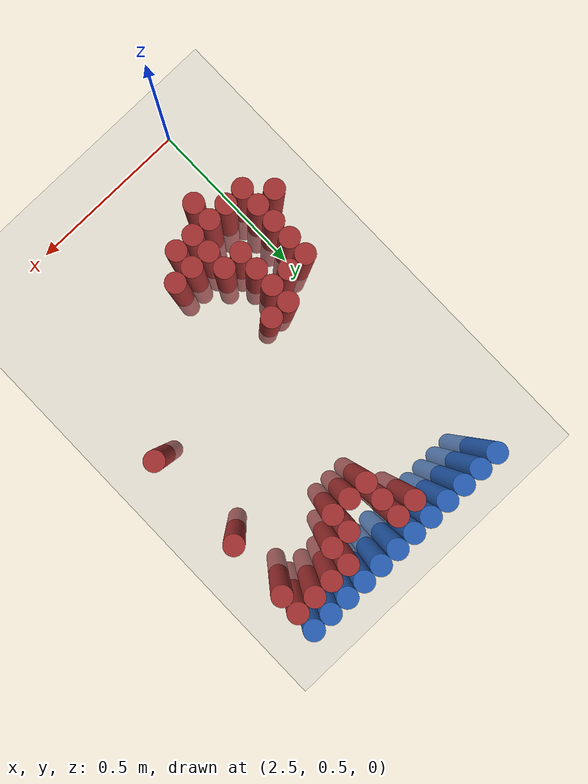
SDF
<sdf version="1.6">
 <world name="default">
  <model name="ground_plane">
   <static>1</static>
   <link name="link">
    <collision name="collision">
     <geometry><plane><normal>0 0 1</normal><size>100 100</size></plane></geometry>
     <surface><friction><ode><mu>100</mu><mu2>50</mu2></ode></friction></surface>
    </collision>
    <visual name="visual">
     <cast_shadows>0</cast_shadows>
     <geometry><plane><normal>0 0 1</normal><size>100 100</size></plane></geometry>
     <material>
      <script><uri>file://media/materials/scripts/gazebo.material</uri><name>Gazebo/Grey</name></script>
     </material>
    </visual>
   </link>
  </model>
  <model name="unit_cylinder_102">
   <static>1</static>
   <pose>2.490000 1.770000 0.000000 0.000000 0.000000 0.000000</pose>
   <link name="link">
    <inertial>
     <mass>1</mass>
     <inertia><ixx>0.145833</ixx><ixy>0</ixy><ixz>0</ixz><iyy>0.145833</iyy><iyz>0</iyz><izz>0.125</izz></inertia>
    </inertial>
    <collision name="collision">
     <geometry><cylinder><radius>0.030000</radius><length>0.5</length></cylinder></geometry>
    </collision>
    <visual name="visual">
     <geometry><cylinder><radius>0.030000</radius><length>0.5</length></cylinder></geometry>
     <material>
      <ambient>0.152000 0.379000 0.720000 1</ambient>
      <diffuse>0.152000 0.379000 0.720000 1</diffuse>
     </material>
     <material>
      <script><name>Gazebo/Grey</name><uri>file://media/materials/scripts/gazebo.material</uri></script>
     </material>
    </visual>
   </link>
  </model>
  <model name="unit_cylinder_103">
   <static>1</static>
   <pose>2.550000 1.770000 0.000000 0.000000 0.000000 0.000000</pose>
   <link name="link">
    <inertial>
     <mass>1</mass>
     <inertia><ixx>0.145833</ixx><ixy>0</ixy><ixz>0</ixz><iyy>0.145833</iyy><iyz>0</iyz><izz>0.125</izz></inertia>
    </inertial>
    <collision name="collision">
     <geometry><cylinder><radius>0.030000</radius><length>0.5</length></cylinder></geometry>
    </collision>
    <visual name="visual">
     <geometry><cylinder><radius>0.030000</radius><length>0.5</length></cylinder></geometry>
     <material>
      <ambient>0.152000 0.379000 0.720000 1</ambient>
      <diffuse>0.152000 0.379000 0.720000 1</diffuse>
     </material>
     <material>
      <script><name>Gazebo/Grey</name><uri>file://media/materials/scripts/gazebo.material</uri></script>
     </material>
    </visual>
   </link>
  </model>
  <model name="unit_cylinder_104">
   <static>1</static>
   <pose>2.610000 1.770000 0.000000 0.000000 0.000000 0.000000</pose>
   <link name="link">
    <inertial>
     <mass>1</mass>
     <inertia><ixx>0.145833</ixx><ixy>0</ixy><ixz>0</ixz><iyy>0.145833</iyy><iyz>0</iyz><izz>0.125</izz></inertia>
    </inertial>
    <collision name="collision">
     <geometry><cylinder><radius>0.030000</radius><length>0.5</length></cylinder></geometry>
    </collision>
    <visual name="visual">
     <geometry><cylinder><radius>0.030000</radius><length>0.5</length></cylinder></geometry>
     <material>
      <ambient>0.152000 0.379000 0.720000 1</ambient>
      <diffuse>0.152000 0.379000 0.720000 1</diffuse>
     </material>
     <material>
      <script><name>Gazebo/Grey</name><uri>file://media/materials/scripts/gazebo.material</uri></script>
     </material>
    </visual>
   </link>
  </model>
  <model name="unit_cylinder_105">
   <static>1</static>
   <pose>2.670000 1.770000 0.000000 0.000000 0.000000 0.000000</pose>
   <link name="link">
    <inertial>
     <mass>1</mass>
     <inertia><ixx>0.145833</ixx><ixy>0</ixy><ixz>0</ixz><iyy>0.145833</iyy><iyz>0</iyz><izz>0.125</izz></inertia>
    </inertial>
    <collision name="collision">
     <geometry><cylinder><radius>0.030000</radius><length>0.5</length></cylinder></geometry>
    </collision>
    <visual name="visual">
     <geometry><cylinder><radius>0.030000</radius><length>0.5</length></cylinder></geometry>
     <material>
      <ambient>0.152000 0.379000 0.720000 1</ambient>
      <diffuse>0.152000 0.379000 0.720000 1</diffuse>
     </material>
     <material>
      <script><name>Gazebo/Grey</name><uri>file://media/materials/scripts/gazebo.material</uri></script>
     </material>
    </visual>
   </link>
  </model>
  <model name="unit_cylinder_106">
   <static>1</static>
   <pose>2.730000 1.770000 0.000000 0.000000 0.000000 0.000000</pose>
   <link name="link">
    <inertial>
     <mass>1</mass>
     <inertia><ixx>0.145833</ixx><ixy>0</ixy><ixz>0</ixz><iyy>0.145833</iyy><iyz>0</iyz><izz>0.125</izz></inertia>
    </inertial>
    <collision name="collision">
     <geometry><cylinder><radius>0.030000</radius><length>0.5</length></cylinder></geometry>
    </collision>
    <visual name="visual">
     <geometry><cylinder><radius>0.030000</radius><length>0.5</length></cylinder></geometry>
     <material>
      <ambient>0.152000 0.379000 0.720000 1</ambient>
      <diffuse>0.152000 0.379000 0.720000 1</diffuse>
     </material>
     <material>
      <script><name>Gazebo/Grey</name><uri>file://media/materials/scripts/gazebo.material</uri></script>
     </material>
    </visual>
   </link>
  </model>
  <model name="unit_cylinder_107">
   <static>1</static>
   <pose>2.790000 1.770000 0.000000 0.000000 0.000000 0.000000</pose>
   <link name="link">
    <inertial>
     <mass>1</mass>
     <inertia><ixx>0.145833</ixx><ixy>0</ixy><ixz>0</ixz><iyy>0.145833</iyy><iyz>0</iyz><izz>0.125</izz></inertia>
    </inertial>
    <collision name="collision">
     <geometry><cylinder><radius>0.030000</radius><length>0.5</length></cylinder></geometry>
    </collision>
    <visual name="visual">
     <geometry><cylinder><radius>0.030000</radius><length>0.5</length></cylinder></geometry>
     <material>
      <ambient>0.152000 0.379000 0.720000 1</ambient>
      <diffuse>0.152000 0.379000 0.720000 1</diffuse>
     </material>
     <material>
      <script><name>Gazebo/Grey</name><uri>file://media/materials/scripts/gazebo.material</uri></script>
     </material>
    </visual>
   </link>
  </model>
  <model name="unit_cylinder_108">
   <static>1</static>
   <pose>2.850000 1.770000 0.000000 0.000000 0.000000 0.000000</pose>
   <link name="link">
    <inertial>
     <mass>1</mass>
     <inertia><ixx>0.145833</ixx><ixy>0</ixy><ixz>0</ixz><iyy>0.145833</iyy><iyz>0</iyz><izz>0.125</izz></inertia>
    </inertial>
    <collision name="collision">
     <geometry><cylinder><radius>0.030000</radius><length>0.5</length></cylinder></geometry>
    </collision>
    <visual name="visual">
     <geometry><cylinder><radius>0.030000</radius><length>0.5</length></cylinder></geometry>
     <material>
      <ambient>0.152000 0.379000 0.720000 1</ambient>
      <diffuse>0.152000 0.379000 0.720000 1</diffuse>
     </material>
     <material>
      <script><name>Gazebo/Grey</name><uri>file://media/materials/scripts/gazebo.material</uri></script>
     </material>
    </visual>
   </link>
  </model>
  <model name="unit_cylinder_109">
   <static>1</static>
   <pose>2.910000 1.770000 0.000000 0.000000 0.000000 0.000000</pose>
   <link name="link">
    <inertial>
     <mass>1</mass>
     <inertia><ixx>0.145833</ixx><ixy>0</ixy><ixz>0</ixz><iyy>0.145833</iyy><iyz>0</iyz><izz>0.125</izz></inertia>
    </inertial>
    <collision name="collision">
     <geometry><cylinder><radius>0.030000</radius><length>0.5</length></cylinder></geometry>
    </collision>
    <visual name="visual">
     <geometry><cylinder><radius>0.030000</radius><length>0.5</length></cylinder></geometry>
     <material>
      <ambient>0.152000 0.379000 0.720000 1</ambient>
      <diffuse>0.152000 0.379000 0.720000 1</diffuse>
     </material>
     <material>
      <script><name>Gazebo/Grey</name><uri>file://media/materials/scripts/gazebo.material</uri></script>
     </material>
    </visual>
   </link>
  </model>
  <model name="unit_cylinder_110">
   <static>1</static>
   <pose>2.970000 1.770000 0.000000 0.000000 0.000000 0.000000</pose>
   <link name="link">
    <inertial>
     <mass>1</mass>
     <inertia><ixx>0.145833</ixx><ixy>0</ixy><ixz>0</ixz><iyy>0.145833</iyy><iyz>0</iyz><izz>0.125</izz></inertia>
    </inertial>
    <collision name="collision">
     <geometry><cylinder><radius>0.030000</radius><length>0.5</length></cylinder></geometry>
    </collision>
    <visual name="visual">
     <geometry><cylinder><radius>0.030000</radius><length>0.5</length></cylinder></geometry>
     <material>
      <ambient>0.152000 0.379000 0.720000 1</ambient>
      <diffuse>0.152000 0.379000 0.720000 1</diffuse>
     </material>
     <material>
      <script><name>Gazebo/Grey</name><uri>file://media/materials/scripts/gazebo.material</uri></script>
     </material>
    </visual>
   </link>
  </model>
  <model name="unit_cylinder_111">
   <static>1</static>
   <pose>3.030000 1.770000 0.000000 0.000000 0.000000 0.000000</pose>
   <link name="link">
    <inertial>
     <mass>1</mass>
     <inertia><ixx>0.145833</ixx><ixy>0</ixy><ixz>0</ixz><iyy>0.145833</iyy><iyz>0</iyz><izz>0.125</izz></inertia>
    </inertial>
    <collision name="collision">
     <geometry><cylinder><radius>0.030000</radius><length>0.5</length></cylinder></geometry>
    </collision>
    <visual name="visual">
     <geometry><cylinder><radius>0.030000</radius><length>0.5</length></cylinder></geometry>
     <material>
      <ambient>0.152000 0.379000 0.720000 1</ambient>
      <diffuse>0.152000 0.379000 0.720000 1</diffuse>
     </material>
     <material>
      <script><name>Gazebo/Grey</name><uri>file://media/materials/scripts/gazebo.material</uri></script>
     </material>
    </visual>
   </link>
  </model>
  <model name="unit_cylinder_112">
   <static>1</static>
   <pose>3.090000 1.770000 0.000000 0.000000 0.000000 0.000000</pose>
   <link name="link">
    <inertial>
     <mass>1</mass>
     <inertia><ixx>0.145833</ixx><ixy>0</ixy><ixz>0</ixz><iyy>0.145833</iyy><iyz>0</iyz><izz>0.125</izz></inertia>
    </inertial>
    <collision name="collision">
     <geometry><cylinder><radius>0.030000</radius><length>0.5</length></cylinder></geometry>
    </collision>
    <visual name="visual">
     <geometry><cylinder><radius>0.030000</radius><length>0.5</length></cylinder></geometry>
     <material>
      <ambient>0.152000 0.379000 0.720000 1</ambient>
      <diffuse>0.152000 0.379000 0.720000 1</diffuse>
     </material>
     <material>
      <script><name>Gazebo/Grey</name><uri>file://media/materials/scripts/gazebo.material</uri></script>
     </material>
    </visual>
   </link>
  </model>
  <model name="unit_cylinder_113">
   <static>1</static>
   <pose>3.150000 1.770000 0.000000 0.000000 0.000000 0.000000</pose>
   <link name="link">
    <inertial>
     <mass>1</mass>
     <inertia><ixx>0.145833</ixx><ixy>0</ixy><ixz>0</ixz><iyy>0.145833</iyy><iyz>0</iyz><izz>0.125</izz></inertia>
    </inertial>
    <collision name="collision">
     <geometry><cylinder><radius>0.030000</radius><length>0.5</length></cylinder></geometry>
    </collision>
    <visual name="visual">
     <geometry><cylinder><radius>0.030000</radius><length>0.5</length></cylinder></geometry>
     <material>
      <ambient>0.152000 0.379000 0.720000 1</ambient>
      <diffuse>0.152000 0.379000 0.720000 1</diffuse>
     </material>
     <material>
      <script><name>Gazebo/Grey</name><uri>file://media/materials/scripts/gazebo.material</uri></script>
     </material>
    </visual>
   </link>
  </model>
  <model name="unit_cylinder_129">
   <static>1</static>
   <pose>2.730000 1.710000 0.000000 0.000000 0.000000 0.000000</pose>
   <link name="link">
    <inertial>
     <mass>1</mass>
     <inertia><ixx>0.145833</ixx><ixy>0</ixy><ixz>0</ixz><iyy>0.145833</iyy><iyz>0</iyz><izz>0.125</izz></inertia>
    </inertial>
    <collision name="collision">
     <geometry><cylinder><radius>0.030000</radius><length>0.5</length></cylinder></geometry>
    </collision>
    <visual name="visual">
     <geometry><cylinder><radius>0.030000</radius><length>0.5</length></cylinder></geometry>
     <material>
      <ambient>0.648000 0.192000 0.192000 1</ambient>
      <diffuse>0.648000 0.192000 0.192000 1</diffuse>
     </material>
     <material>
      <script><name>Gazebo/Grey</name><uri>file://media/materials/scripts/gazebo.material</uri></script>
     </material>
    </visual>
   </link>
  </model>
  <model name="unit_cylinder_130">
   <static>1</static>
   <pose>2.790000 1.710000 0.000000 0.000000 0.000000 0.000000</pose>
   <link name="link">
    <inertial>
     <mass>1</mass>
     <inertia><ixx>0.145833</ixx><ixy>0</ixy><ixz>0</ixz><iyy>0.145833</iyy><iyz>0</iyz><izz>0.125</izz></inertia>
    </inertial>
    <collision name="collision">
     <geometry><cylinder><radius>0.030000</radius><length>0.5</length></cylinder></geometry>
    </collision>
    <visual name="visual">
     <geometry><cylinder><radius>0.030000</radius><length>0.5</length></cylinder></geometry>
     <material>
      <ambient>0.648000 0.192000 0.192000 1</ambient>
      <diffuse>0.648000 0.192000 0.192000 1</diffuse>
     </material>
     <material>
      <script><name>Gazebo/Grey</name><uri>file://media/materials/scripts/gazebo.material</uri></script>
     </material>
    </visual>
   </link>
  </model>
  <model name="unit_cylinder_131">
   <static>1</static>
   <pose>2.970000 1.710000 0.000000 0.000000 0.000000 0.000000</pose>
   <link name="link">
    <inertial>
     <mass>1</mass>
     <inertia><ixx>0.145833</ixx><ixy>0</ixy><ixz>0</ixz><iyy>0.145833</iyy><iyz>0</iyz><izz>0.125</izz></inertia>
    </inertial>
    <collision name="collision">
     <geometry><cylinder><radius>0.030000</radius><length>0.5</length></cylinder></geometry>
    </collision>
    <visual name="visual">
     <geometry><cylinder><radius>0.030000</radius><length>0.5</length></cylinder></geometry>
     <material>
      <ambient>0.648000 0.192000 0.192000 1</ambient>
      <diffuse>0.648000 0.192000 0.192000 1</diffuse>
     </material>
     <material>
      <script><name>Gazebo/Grey</name><uri>file://media/materials/scripts/gazebo.material</uri></script>
     </material>
    </visual>
   </link>
  </model>
  <model name="unit_cylinder_132">
   <static>1</static>
   <pose>3.030000 1.710000 0.000000 0.000000 0.000000 0.000000</pose>
   <link name="link">
    <inertial>
     <mass>1</mass>
     <inertia><ixx>0.145833</ixx><ixy>0</ixy><ixz>0</ixz><iyy>0.145833</iyy><iyz>0</iyz><izz>0.125</izz></inertia>
    </inertial>
    <collision name="collision">
     <geometry><cylinder><radius>0.030000</radius><length>0.5</length></cylinder></geometry>
    </collision>
    <visual name="visual">
     <geometry><cylinder><radius>0.030000</radius><length>0.5</length></cylinder></geometry>
     <material>
      <ambient>0.648000 0.192000 0.192000 1</ambient>
      <diffuse>0.648000 0.192000 0.192000 1</diffuse>
     </material>
     <material>
      <script><name>Gazebo/Grey</name><uri>file://media/materials/scripts/gazebo.material</uri></script>
     </material>
    </visual>
   </link>
  </model>
  <model name="unit_cylinder_133">
   <static>1</static>
   <pose>3.090000 1.710000 0.000000 0.000000 0.000000 0.000000</pose>
   <link name="link">
    <inertial>
     <mass>1</mass>
     <inertia><ixx>0.145833</ixx><ixy>0</ixy><ixz>0</ixz><iyy>0.145833</iyy><iyz>0</iyz><izz>0.125</izz></inertia>
    </inertial>
    <collision name="collision">
     <geometry><cylinder><radius>0.030000</radius><length>0.5</length></cylinder></geometry>
    </collision>
    <visual name="visual">
     <geometry><cylinder><radius>0.030000</radius><length>0.5</length></cylinder></geometry>
     <material>
      <ambient>0.648000 0.192000 0.192000 1</ambient>
      <diffuse>0.648000 0.192000 0.192000 1</diffuse>
     </material>
     <material>
      <script><name>Gazebo/Grey</name><uri>file://media/materials/scripts/gazebo.material</uri></script>
     </material>
    </visual>
   </link>
  </model>
  <model name="unit_cylinder_134">
   <static>1</static>
   <pose>3.150000 1.710000 0.000000 0.000000 0.000000 0.000000</pose>
   <link name="link">
    <inertial>
     <mass>1</mass>
     <inertia><ixx>0.145833</ixx><ixy>0</ixy><ixz>0</ixz><iyy>0.145833</iyy><iyz>0</iyz><izz>0.125</izz></inertia>
    </inertial>
    <collision name="collision">
     <geometry><cylinder><radius>0.030000</radius><length>0.5</length></cylinder></geometry>
    </collision>
    <visual name="visual">
     <geometry><cylinder><radius>0.030000</radius><length>0.5</length></cylinder></geometry>
     <material>
      <ambient>0.648000 0.192000 0.192000 1</ambient>
      <diffuse>0.648000 0.192000 0.192000 1</diffuse>
     </material>
     <material>
      <script><name>Gazebo/Grey</name><uri>file://media/materials/scripts/gazebo.material</uri></script>
     </material>
    </visual>
   </link>
  </model>
  <model name="unit_cylinder_143">
   <static>1</static>
   <pose>2.790000 1.650000 0.000000 0.000000 0.000000 0.000000</pose>
   <link name="link">
    <inertial>
     <mass>1</mass>
     <inertia><ixx>0.145833</ixx><ixy>0</ixy><ixz>0</ixz><iyy>0.145833</iyy><iyz>0</iyz><izz>0.125</izz></inertia>
    </inertial>
    <collision name="collision">
     <geometry><cylinder><radius>0.030000</radius><length>0.5</length></cylinder></geometry>
    </collision>
    <visual name="visual">
     <geometry><cylinder><radius>0.030000</radius><length>0.5</length></cylinder></geometry>
     <material>
      <ambient>0.648000 0.192000 0.192000 1</ambient>
      <diffuse>0.648000 0.192000 0.192000 1</diffuse>
     </material>
     <material>
      <script><name>Gazebo/Grey</name><uri>file://media/materials/scripts/gazebo.material</uri></script>
     </material>
    </visual>
   </link>
  </model>
  <model name="unit_cylinder_144">
   <static>1</static>
   <pose>2.910000 1.650000 0.000000 0.000000 0.000000 0.000000</pose>
   <link name="link">
    <inertial>
     <mass>1</mass>
     <inertia><ixx>0.145833</ixx><ixy>0</ixy><ixz>0</ixz><iyy>0.145833</iyy><iyz>0</iyz><izz>0.125</izz></inertia>
    </inertial>
    <collision name="collision">
     <geometry><cylinder><radius>0.030000</radius><length>0.5</length></cylinder></geometry>
    </collision>
    <visual name="visual">
     <geometry><cylinder><radius>0.030000</radius><length>0.5</length></cylinder></geometry>
     <material>
      <ambient>0.648000 0.192000 0.192000 1</ambient>
      <diffuse>0.648000 0.192000 0.192000 1</diffuse>
     </material>
     <material>
      <script><name>Gazebo/Grey</name><uri>file://media/materials/scripts/gazebo.material</uri></script>
     </material>
    </visual>
   </link>
  </model>
  <model name="unit_cylinder_145">
   <static>1</static>
   <pose>2.970000 1.650000 0.000000 0.000000 0.000000 0.000000</pose>
   <link name="link">
    <inertial>
     <mass>1</mass>
     <inertia><ixx>0.145833</ixx><ixy>0</ixy><ixz>0</ixz><iyy>0.145833</iyy><iyz>0</iyz><izz>0.125</izz></inertia>
    </inertial>
    <collision name="collision">
     <geometry><cylinder><radius>0.030000</radius><length>0.5</length></cylinder></geometry>
    </collision>
    <visual name="visual">
     <geometry><cylinder><radius>0.030000</radius><length>0.5</length></cylinder></geometry>
     <material>
      <ambient>0.648000 0.192000 0.192000 1</ambient>
      <diffuse>0.648000 0.192000 0.192000 1</diffuse>
     </material>
     <material>
      <script><name>Gazebo/Grey</name><uri>file://media/materials/scripts/gazebo.material</uri></script>
     </material>
    </visual>
   </link>
  </model>
  <model name="unit_cylinder_146">
   <static>1</static>
   <pose>3.150000 1.650000 0.000000 0.000000 0.000000 0.000000</pose>
   <link name="link">
    <inertial>
     <mass>1</mass>
     <inertia><ixx>0.145833</ixx><ixy>0</ixy><ixz>0</ixz><iyy>0.145833</iyy><iyz>0</iyz><izz>0.125</izz></inertia>
    </inertial>
    <collision name="collision">
     <geometry><cylinder><radius>0.030000</radius><length>0.5</length></cylinder></geometry>
    </collision>
    <visual name="visual">
     <geometry><cylinder><radius>0.030000</radius><length>0.5</length></cylinder></geometry>
     <material>
      <ambient>0.648000 0.192000 0.192000 1</ambient>
      <diffuse>0.648000 0.192000 0.192000 1</diffuse>
     </material>
     <material>
      <script><name>Gazebo/Grey</name><uri>file://media/materials/scripts/gazebo.material</uri></script>
     </material>
    </visual>
   </link>
  </model>
  <model name="unit_cylinder_158">
   <static>1</static>
   <pose>2.790000 1.590000 0.000000 0.000000 0.000000 0.000000</pose>
   <link name="link">
    <inertial>
     <mass>1</mass>
     <inertia><ixx>0.145833</ixx><ixy>0</ixy><ixz>0</ixz><iyy>0.145833</iyy><iyz>0</iyz><izz>0.125</izz></inertia>
    </inertial>
    <collision name="collision">
     <geometry><cylinder><radius>0.030000</radius><length>0.5</length></cylinder></geometry>
    </collision>
    <visual name="visual">
     <geometry><cylinder><radius>0.030000</radius><length>0.5</length></cylinder></geometry>
     <material>
      <ambient>0.648000 0.192000 0.192000 1</ambient>
      <diffuse>0.648000 0.192000 0.192000 1</diffuse>
     </material>
     <material>
      <script><name>Gazebo/Grey</name><uri>file://media/materials/scripts/gazebo.material</uri></script>
     </material>
    </visual>
   </link>
  </model>
  <model name="unit_cylinder_159">
   <static>1</static>
   <pose>2.850000 1.590000 0.000000 0.000000 0.000000 0.000000</pose>
   <link name="link">
    <inertial>
     <mass>1</mass>
     <inertia><ixx>0.145833</ixx><ixy>0</ixy><ixz>0</ixz><iyy>0.145833</iyy><iyz>0</iyz><izz>0.125</izz></inertia>
    </inertial>
    <collision name="collision">
     <geometry><cylinder><radius>0.030000</radius><length>0.5</length></cylinder></geometry>
    </collision>
    <visual name="visual">
     <geometry><cylinder><radius>0.030000</radius><length>0.5</length></cylinder></geometry>
     <material>
      <ambient>0.648000 0.192000 0.192000 1</ambient>
      <diffuse>0.648000 0.192000 0.192000 1</diffuse>
     </material>
     <material>
      <script><name>Gazebo/Grey</name><uri>file://media/materials/scripts/gazebo.material</uri></script>
     </material>
    </visual>
   </link>
  </model>
  <model name="unit_cylinder_160">
   <static>1</static>
   <pose>2.910000 1.590000 0.000000 0.000000 0.000000 0.000000</pose>
   <link name="link">
    <inertial>
     <mass>1</mass>
     <inertia><ixx>0.145833</ixx><ixy>0</ixy><ixz>0</ixz><iyy>0.145833</iyy><iyz>0</iyz><izz>0.125</izz></inertia>
    </inertial>
    <collision name="collision">
     <geometry><cylinder><radius>0.030000</radius><length>0.5</length></cylinder></geometry>
    </collision>
    <visual name="visual">
     <geometry><cylinder><radius>0.030000</radius><length>0.5</length></cylinder></geometry>
     <material>
      <ambient>0.648000 0.192000 0.192000 1</ambient>
      <diffuse>0.648000 0.192000 0.192000 1</diffuse>
     </material>
     <material>
      <script><name>Gazebo/Grey</name><uri>file://media/materials/scripts/gazebo.material</uri></script>
     </material>
    </visual>
   </link>
  </model>
  <model name="unit_cylinder_169">
   <static>1</static>
   <pose>3.150000 1.470000 0.000000 0.000000 0.000000 0.000000</pose>
   <link name="link">
    <inertial>
     <mass>1</mass>
     <inertia><ixx>0.145833</ixx><ixy>0</ixy><ixz>0</ixz><iyy>0.145833</iyy><iyz>0</iyz><izz>0.125</izz></inertia>
    </inertial>
    <collision name="collision">
     <geometry><cylinder><radius>0.030000</radius><length>0.5</length></cylinder></geometry>
    </collision>
    <visual name="visual">
     <geometry><cylinder><radius>0.030000</radius><length>0.5</length></cylinder></geometry>
     <material>
      <ambient>0.648000 0.192000 0.192000 1</ambient>
      <diffuse>0.648000 0.192000 0.192000 1</diffuse>
     </material>
     <material>
      <script><name>Gazebo/Grey</name><uri>file://media/materials/scripts/gazebo.material</uri></script>
     </material>
    </visual>
   </link>
  </model>
  <model name="unit_cylinder_176">
   <static>1</static>
   <pose>3.150000 1.170000 0.000000 0.000000 0.000000 0.000000</pose>
   <link name="link">
    <inertial>
     <mass>1</mass>
     <inertia><ixx>0.145833</ixx><ixy>0</ixy><ixz>0</ixz><iyy>0.145833</iyy><iyz>0</iyz><izz>0.125</izz></inertia>
    </inertial>
    <collision name="collision">
     <geometry><cylinder><radius>0.030000</radius><length>0.5</length></cylinder></geometry>
    </collision>
    <visual name="visual">
     <geometry><cylinder><radius>0.030000</radius><length>0.5</length></cylinder></geometry>
     <material>
      <ambient>0.648000 0.192000 0.192000 1</ambient>
      <diffuse>0.648000 0.192000 0.192000 1</diffuse>
     </material>
     <material>
      <script><name>Gazebo/Grey</name><uri>file://media/materials/scripts/gazebo.material</uri></script>
     </material>
    </visual>
   </link>
  </model>
  <model name="unit_cylinder_178">
   <static>1</static>
   <pose>2.610000 1.110000 0.000000 0.000000 0.000000 0.000000</pose>
   <link name="link">
    <inertial>
     <mass>1</mass>
     <inertia><ixx>0.145833</ixx><ixy>0</ixy><ixz>0</ixz><iyy>0.145833</iyy><iyz>0</iyz><izz>0.125</izz></inertia>
    </inertial>
    <collision name="collision">
     <geometry><cylinder><radius>0.030000</radius><length>0.5</length></cylinder></geometry>
    </collision>
    <visual name="visual">
     <geometry><cylinder><radius>0.030000</radius><length>0.5</length></cylinder></geometry>
     <material>
      <ambient>0.648000 0.192000 0.192000 1</ambient>
      <diffuse>0.648000 0.192000 0.192000 1</diffuse>
     </material>
     <material>
      <script><name>Gazebo/Grey</name><uri>file://media/materials/scripts/gazebo.material</uri></script>
     </material>
    </visual>
   </link>
  </model>
  <model name="unit_cylinder_179">
   <static>1</static>
   <pose>2.670000 1.110000 0.000000 0.000000 0.000000 0.000000</pose>
   <link name="link">
    <inertial>
     <mass>1</mass>
     <inertia><ixx>0.145833</ixx><ixy>0</ixy><ixz>0</ixz><iyy>0.145833</iyy><iyz>0</iyz><izz>0.125</izz></inertia>
    </inertial>
    <collision name="collision">
     <geometry><cylinder><radius>0.030000</radius><length>0.5</length></cylinder></geometry>
    </collision>
    <visual name="visual">
     <geometry><cylinder><radius>0.030000</radius><length>0.5</length></cylinder></geometry>
     <material>
      <ambient>0.648000 0.192000 0.192000 1</ambient>
      <diffuse>0.648000 0.192000 0.192000 1</diffuse>
     </material>
     <material>
      <script><name>Gazebo/Grey</name><uri>file://media/materials/scripts/gazebo.material</uri></script>
     </material>
    </visual>
   </link>
  </model>
  <model name="unit_cylinder_180">
   <static>1</static>
   <pose>2.490000 1.050000 0.000000 0.000000 0.000000 0.000000</pose>
   <link name="link">
    <inertial>
     <mass>1</mass>
     <inertia><ixx>0.145833</ixx><ixy>0</ixy><ixz>0</ixz><iyy>0.145833</iyy><iyz>0</iyz><izz>0.125</izz></inertia>
    </inertial>
    <collision name="collision">
     <geometry><cylinder><radius>0.030000</radius><length>0.5</length></cylinder></geometry>
    </collision>
    <visual name="visual">
     <geometry><cylinder><radius>0.030000</radius><length>0.5</length></cylinder></geometry>
     <material>
      <ambient>0.648000 0.192000 0.192000 1</ambient>
      <diffuse>0.648000 0.192000 0.192000 1</diffuse>
     </material>
     <material>
      <script><name>Gazebo/Grey</name><uri>file://media/materials/scripts/gazebo.material</uri></script>
     </material>
    </visual>
   </link>
  </model>
  <model name="unit_cylinder_181">
   <static>1</static>
   <pose>2.550000 1.050000 0.000000 0.000000 0.000000 0.000000</pose>
   <link name="link">
    <inertial>
     <mass>1</mass>
     <inertia><ixx>0.145833</ixx><ixy>0</ixy><ixz>0</ixz><iyy>0.145833</iyy><iyz>0</iyz><izz>0.125</izz></inertia>
    </inertial>
    <collision name="collision">
     <geometry><cylinder><radius>0.030000</radius><length>0.5</length></cylinder></geometry>
    </collision>
    <visual name="visual">
     <geometry><cylinder><radius>0.030000</radius><length>0.5</length></cylinder></geometry>
     <material>
      <ambient>0.648000 0.192000 0.192000 1</ambient>
      <diffuse>0.648000 0.192000 0.192000 1</diffuse>
     </material>
     <material>
      <script><name>Gazebo/Grey</name><uri>file://media/materials/scripts/gazebo.material</uri></script>
     </material>
    </visual>
   </link>
  </model>
  <model name="unit_cylinder_182">
   <static>1</static>
   <pose>2.610000 1.050000 0.000000 0.000000 0.000000 0.000000</pose>
   <link name="link">
    <inertial>
     <mass>1</mass>
     <inertia><ixx>0.145833</ixx><ixy>0</ixy><ixz>0</ixz><iyy>0.145833</iyy><iyz>0</iyz><izz>0.125</izz></inertia>
    </inertial>
    <collision name="collision">
     <geometry><cylinder><radius>0.030000</radius><length>0.5</length></cylinder></geometry>
    </collision>
    <visual name="visual">
     <geometry><cylinder><radius>0.030000</radius><length>0.5</length></cylinder></geometry>
     <material>
      <ambient>0.648000 0.192000 0.192000 1</ambient>
      <diffuse>0.648000 0.192000 0.192000 1</diffuse>
     </material>
     <material>
      <script><name>Gazebo/Grey</name><uri>file://media/materials/scripts/gazebo.material</uri></script>
     </material>
    </visual>
   </link>
  </model>
  <model name="unit_cylinder_183">
   <static>1</static>
   <pose>2.490000 0.990000 0.000000 0.000000 0.000000 0.000000</pose>
   <link name="link">
    <inertial>
     <mass>1</mass>
     <inertia><ixx>0.145833</ixx><ixy>0</ixy><ixz>0</ixz><iyy>0.145833</iyy><iyz>0</iyz><izz>0.125</izz></inertia>
    </inertial>
    <collision name="collision">
     <geometry><cylinder><radius>0.030000</radius><length>0.5</length></cylinder></geometry>
    </collision>
    <visual name="visual">
     <geometry><cylinder><radius>0.030000</radius><length>0.5</length></cylinder></geometry>
     <material>
      <ambient>0.648000 0.192000 0.192000 1</ambient>
      <diffuse>0.648000 0.192000 0.192000 1</diffuse>
     </material>
     <material>
      <script><name>Gazebo/Grey</name><uri>file://media/materials/scripts/gazebo.material</uri></script>
     </material>
    </visual>
   </link>
  </model>
  <model name="unit_cylinder_184">
   <static>1</static>
   <pose>2.610000 0.990000 0.000000 0.000000 0.000000 0.000000</pose>
   <link name="link">
    <inertial>
     <mass>1</mass>
     <inertia><ixx>0.145833</ixx><ixy>0</ixy><ixz>0</ixz><iyy>0.145833</iyy><iyz>0</iyz><izz>0.125</izz></inertia>
    </inertial>
    <collision name="collision">
     <geometry><cylinder><radius>0.030000</radius><length>0.5</length></cylinder></geometry>
    </collision>
    <visual name="visual">
     <geometry><cylinder><radius>0.030000</radius><length>0.5</length></cylinder></geometry>
     <material>
      <ambient>0.648000 0.192000 0.192000 1</ambient>
      <diffuse>0.648000 0.192000 0.192000 1</diffuse>
     </material>
     <material>
      <script><name>Gazebo/Grey</name><uri>file://media/materials/scripts/gazebo.material</uri></script>
     </material>
    </visual>
   </link>
  </model>
  <model name="unit_cylinder_185">
   <static>1</static>
   <pose>2.490000 0.930000 0.000000 0.000000 0.000000 0.000000</pose>
   <link name="link">
    <inertial>
     <mass>1</mass>
     <inertia><ixx>0.145833</ixx><ixy>0</ixy><ixz>0</ixz><iyy>0.145833</iyy><iyz>0</iyz><izz>0.125</izz></inertia>
    </inertial>
    <collision name="collision">
     <geometry><cylinder><radius>0.030000</radius><length>0.5</length></cylinder></geometry>
    </collision>
    <visual name="visual">
     <geometry><cylinder><radius>0.030000</radius><length>0.5</length></cylinder></geometry>
     <material>
      <ambient>0.648000 0.192000 0.192000 1</ambient>
      <diffuse>0.648000 0.192000 0.192000 1</diffuse>
     </material>
     <material>
      <script><name>Gazebo/Grey</name><uri>file://media/materials/scripts/gazebo.material</uri></script>
     </material>
    </visual>
   </link>
  </model>
  <model name="unit_cylinder_186">
   <static>1</static>
   <pose>2.610000 0.930000 0.000000 0.000000 0.000000 0.000000</pose>
   <link name="link">
    <inertial>
     <mass>1</mass>
     <inertia><ixx>0.145833</ixx><ixy>0</ixy><ixz>0</ixz><iyy>0.145833</iyy><iyz>0</iyz><izz>0.125</izz></inertia>
    </inertial>
    <collision name="collision">
     <geometry><cylinder><radius>0.030000</radius><length>0.5</length></cylinder></geometry>
    </collision>
    <visual name="visual">
     <geometry><cylinder><radius>0.030000</radius><length>0.5</length></cylinder></geometry>
     <material>
      <ambient>0.648000 0.192000 0.192000 1</ambient>
      <diffuse>0.648000 0.192000 0.192000 1</diffuse>
     </material>
     <material>
      <script><name>Gazebo/Grey</name><uri>file://media/materials/scripts/gazebo.material</uri></script>
     </material>
    </visual>
   </link>
  </model>
  <model name="unit_cylinder_187">
   <static>1</static>
   <pose>2.670000 0.930000 0.000000 0.000000 0.000000 0.000000</pose>
   <link name="link">
    <inertial>
     <mass>1</mass>
     <inertia><ixx>0.145833</ixx><ixy>0</ixy><ixz>0</ixz><iyy>0.145833</iyy><iyz>0</iyz><izz>0.125</izz></inertia>
    </inertial>
    <collision name="collision">
     <geometry><cylinder><radius>0.030000</radius><length>0.5</length></cylinder></geometry>
    </collision>
    <visual name="visual">
     <geometry><cylinder><radius>0.030000</radius><length>0.5</length></cylinder></geometry>
     <material>
      <ambient>0.648000 0.192000 0.192000 1</ambient>
      <diffuse>0.648000 0.192000 0.192000 1</diffuse>
     </material>
     <material>
      <script><name>Gazebo/Grey</name><uri>file://media/materials/scripts/gazebo.material</uri></script>
     </material>
    </visual>
   </link>
  </model>
  <model name="unit_cylinder_192">
   <static>1</static>
   <pose>2.430000 0.870000 0.000000 0.000000 0.000000 0.000000</pose>
   <link name="link">
    <inertial>
     <mass>1</mass>
     <inertia><ixx>0.145833</ixx><ixy>0</ixy><ixz>0</ixz><iyy>0.145833</iyy><iyz>0</iyz><izz>0.125</izz></inertia>
    </inertial>
    <collision name="collision">
     <geometry><cylinder><radius>0.030000</radius><length>0.5</length></cylinder></geometry>
    </collision>
    <visual name="visual">
     <geometry><cylinder><radius>0.030000</radius><length>0.5</length></cylinder></geometry>
     <material>
      <ambient>0.648000 0.192000 0.192000 1</ambient>
      <diffuse>0.648000 0.192000 0.192000 1</diffuse>
     </material>
     <material>
      <script><name>Gazebo/Grey</name><uri>file://media/materials/scripts/gazebo.material</uri></script>
     </material>
    </visual>
   </link>
  </model>
  <model name="unit_cylinder_193">
   <static>1</static>
   <pose>2.490000 0.870000 0.000000 0.000000 0.000000 0.000000</pose>
   <link name="link">
    <inertial>
     <mass>1</mass>
     <inertia><ixx>0.145833</ixx><ixy>0</ixy><ixz>0</ixz><iyy>0.145833</iyy><iyz>0</iyz><izz>0.125</izz></inertia>
    </inertial>
    <collision name="collision">
     <geometry><cylinder><radius>0.030000</radius><length>0.5</length></cylinder></geometry>
    </collision>
    <visual name="visual">
     <geometry><cylinder><radius>0.030000</radius><length>0.5</length></cylinder></geometry>
     <material>
      <ambient>0.648000 0.192000 0.192000 1</ambient>
      <diffuse>0.648000 0.192000 0.192000 1</diffuse>
     </material>
     <material>
      <script><name>Gazebo/Grey</name><uri>file://media/materials/scripts/gazebo.material</uri></script>
     </material>
    </visual>
   </link>
  </model>
  <model name="unit_cylinder_194">
   <static>1</static>
   <pose>2.670000 0.870000 0.000000 0.000000 0.000000 0.000000</pose>
   <link name="link">
    <inertial>
     <mass>1</mass>
     <inertia><ixx>0.145833</ixx><ixy>0</ixy><ixz>0</ixz><iyy>0.145833</iyy><iyz>0</iyz><izz>0.125</izz></inertia>
    </inertial>
    <collision name="collision">
     <geometry><cylinder><radius>0.030000</radius><length>0.5</length></cylinder></geometry>
    </collision>
    <visual name="visual">
     <geometry><cylinder><radius>0.030000</radius><length>0.5</length></cylinder></geometry>
     <material>
      <ambient>0.648000 0.192000 0.192000 1</ambient>
      <diffuse>0.648000 0.192000 0.192000 1</diffuse>
     </material>
     <material>
      <script><name>Gazebo/Grey</name><uri>file://media/materials/scripts/gazebo.material</uri></script>
     </material>
    </visual>
   </link>
  </model>
  <model name="unit_cylinder_195">
   <static>1</static>
   <pose>2.730000 0.870000 0.000000 0.000000 0.000000 0.000000</pose>
   <link name="link">
    <inertial>
     <mass>1</mass>
     <inertia><ixx>0.145833</ixx><ixy>0</ixy><ixz>0</ixz><iyy>0.145833</iyy><iyz>0</iyz><izz>0.125</izz></inertia>
    </inertial>
    <collision name="collision">
     <geometry><cylinder><radius>0.030000</radius><length>0.5</length></cylinder></geometry>
    </collision>
    <visual name="visual">
     <geometry><cylinder><radius>0.030000</radius><length>0.5</length></cylinder></geometry>
     <material>
      <ambient>0.648000 0.192000 0.192000 1</ambient>
      <diffuse>0.648000 0.192000 0.192000 1</diffuse>
     </material>
     <material>
      <script><name>Gazebo/Grey</name><uri>file://media/materials/scripts/gazebo.material</uri></script>
     </material>
    </visual>
   </link>
  </model>
  <model name="unit_cylinder_196">
   <static>1</static>
   <pose>2.790000 0.870000 0.000000 0.000000 0.000000 0.000000</pose>
   <link name="link">
    <inertial>
     <mass>1</mass>
     <inertia><ixx>0.145833</ixx><ixy>0</ixy><ixz>0</ixz><iyy>0.145833</iyy><iyz>0</iyz><izz>0.125</izz></inertia>
    </inertial>
    <collision name="collision">
     <geometry><cylinder><radius>0.030000</radius><length>0.5</length></cylinder></geometry>
    </collision>
    <visual name="visual">
     <geometry><cylinder><radius>0.030000</radius><length>0.5</length></cylinder></geometry>
     <material>
      <ambient>0.648000 0.192000 0.192000 1</ambient>
      <diffuse>0.648000 0.192000 0.192000 1</diffuse>
     </material>
     <material>
      <script><name>Gazebo/Grey</name><uri>file://media/materials/scripts/gazebo.material</uri></script>
     </material>
    </visual>
   </link>
  </model>
  <model name="unit_cylinder_200">
   <static>1</static>
   <pose>2.490000 0.810000 0.000000 0.000000 0.000000 0.000000</pose>
   <link name="link">
    <inertial>
     <mass>1</mass>
     <inertia><ixx>0.145833</ixx><ixy>0</ixy><ixz>0</ixz><iyy>0.145833</iyy><iyz>0</iyz><izz>0.125</izz></inertia>
    </inertial>
    <collision name="collision">
     <geometry><cylinder><radius>0.030000</radius><length>0.5</length></cylinder></geometry>
    </collision>
    <visual name="visual">
     <geometry><cylinder><radius>0.030000</radius><length>0.5</length></cylinder></geometry>
     <material>
      <ambient>0.648000 0.192000 0.192000 1</ambient>
      <diffuse>0.648000 0.192000 0.192000 1</diffuse>
     </material>
     <material>
      <script><name>Gazebo/Grey</name><uri>file://media/materials/scripts/gazebo.material</uri></script>
     </material>
    </visual>
   </link>
  </model>
  <model name="unit_cylinder_201">
   <static>1</static>
   <pose>2.550000 0.810000 0.000000 0.000000 0.000000 0.000000</pose>
   <link name="link">
    <inertial>
     <mass>1</mass>
     <inertia><ixx>0.145833</ixx><ixy>0</ixy><ixz>0</ixz><iyy>0.145833</iyy><iyz>0</iyz><izz>0.125</izz></inertia>
    </inertial>
    <collision name="collision">
     <geometry><cylinder><radius>0.030000</radius><length>0.5</length></cylinder></geometry>
    </collision>
    <visual name="visual">
     <geometry><cylinder><radius>0.030000</radius><length>0.5</length></cylinder></geometry>
     <material>
      <ambient>0.648000 0.192000 0.192000 1</ambient>
      <diffuse>0.648000 0.192000 0.192000 1</diffuse>
     </material>
     <material>
      <script><name>Gazebo/Grey</name><uri>file://media/materials/scripts/gazebo.material</uri></script>
     </material>
    </visual>
   </link>
  </model>
  <model name="unit_cylinder_202">
   <static>1</static>
   <pose>2.610000 0.810000 0.000000 0.000000 0.000000 0.000000</pose>
   <link name="link">
    <inertial>
     <mass>1</mass>
     <inertia><ixx>0.145833</ixx><ixy>0</ixy><ixz>0</ixz><iyy>0.145833</iyy><iyz>0</iyz><izz>0.125</izz></inertia>
    </inertial>
    <collision name="collision">
     <geometry><cylinder><radius>0.030000</radius><length>0.5</length></cylinder></geometry>
    </collision>
    <visual name="visual">
     <geometry><cylinder><radius>0.030000</radius><length>0.5</length></cylinder></geometry>
     <material>
      <ambient>0.648000 0.192000 0.192000 1</ambient>
      <diffuse>0.648000 0.192000 0.192000 1</diffuse>
     </material>
     <material>
      <script><name>Gazebo/Grey</name><uri>file://media/materials/scripts/gazebo.material</uri></script>
     </material>
    </visual>
   </link>
  </model>
  <model name="unit_cylinder_203">
   <static>1</static>
   <pose>2.670000 0.810000 0.000000 0.000000 0.000000 0.000000</pose>
   <link name="link">
    <inertial>
     <mass>1</mass>
     <inertia><ixx>0.145833</ixx><ixy>0</ixy><ixz>0</ixz><iyy>0.145833</iyy><iyz>0</iyz><izz>0.125</izz></inertia>
    </inertial>
    <collision name="collision">
     <geometry><cylinder><radius>0.030000</radius><length>0.5</length></cylinder></geometry>
    </collision>
    <visual name="visual">
     <geometry><cylinder><radius>0.030000</radius><length>0.5</length></cylinder></geometry>
     <material>
      <ambient>0.648000 0.192000 0.192000 1</ambient>
      <diffuse>0.648000 0.192000 0.192000 1</diffuse>
     </material>
     <material>
      <script><name>Gazebo/Grey</name><uri>file://media/materials/scripts/gazebo.material</uri></script>
     </material>
    </visual>
   </link>
  </model>
  <model name="unit_cylinder_204">
   <static>1</static>
   <pose>2.730000 0.810000 0.000000 0.000000 0.000000 0.000000</pose>
   <link name="link">
    <inertial>
     <mass>1</mass>
     <inertia><ixx>0.145833</ixx><ixy>0</ixy><ixz>0</ixz><iyy>0.145833</iyy><iyz>0</iyz><izz>0.125</izz></inertia>
    </inertial>
    <collision name="collision">
     <geometry><cylinder><radius>0.030000</radius><length>0.5</length></cylinder></geometry>
    </collision>
    <visual name="visual">
     <geometry><cylinder><radius>0.030000</radius><length>0.5</length></cylinder></geometry>
     <material>
      <ambient>0.648000 0.192000 0.192000 1</ambient>
      <diffuse>0.648000 0.192000 0.192000 1</diffuse>
     </material>
     <material>
      <script><name>Gazebo/Grey</name><uri>file://media/materials/scripts/gazebo.material</uri></script>
     </material>
    </visual>
   </link>
  </model>
  <model name="unit_cylinder_211">
   <static>1</static>
   <pose>2.610000 0.750000 0.000000 0.000000 0.000000 0.000000</pose>
   <link name="link">
    <inertial>
     <mass>1</mass>
     <inertia><ixx>0.145833</ixx><ixy>0</ixy><ixz>0</ixz><iyy>0.145833</iyy><iyz>0</iyz><izz>0.125</izz></inertia>
    </inertial>
    <collision name="collision">
     <geometry><cylinder><radius>0.030000</radius><length>0.5</length></cylinder></geometry>
    </collision>
    <visual name="visual">
     <geometry><cylinder><radius>0.030000</radius><length>0.5</length></cylinder></geometry>
     <material>
      <ambient>0.648000 0.192000 0.192000 1</ambient>
      <diffuse>0.648000 0.192000 0.192000 1</diffuse>
     </material>
     <material>
      <script><name>Gazebo/Grey</name><uri>file://media/materials/scripts/gazebo.material</uri></script>
     </material>
    </visual>
   </link>
  </model>
 </world>
</sdf>
